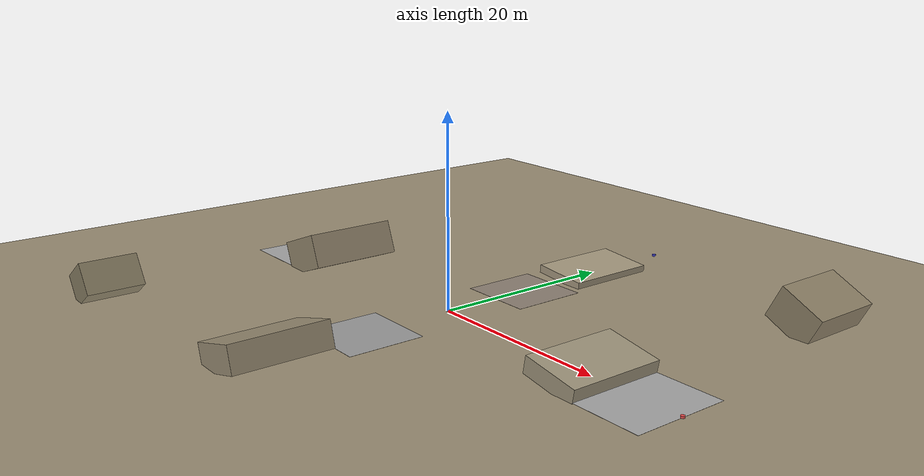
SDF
<?xml version="1.0"?>
<sdf version="1.8">
  <world name="leo_sloped_terrain">

    <!-- ── Physics ─────────────────────────────────────────────────── -->
    <physics name="1ms" type="ignored">
      <max_step_size>0.001</max_step_size>
      <real_time_factor>1.0</real_time_factor>
    </physics>

    <!-- ── Plugins ──────────────────────────────────────────────────── -->
    <plugin filename="ignition-gazebo-physics-system"
            name="ignition::gazebo::systems::Physics"/>
    <plugin filename="ignition-gazebo-sensors-system"
            name="ignition::gazebo::systems::Sensors">
      <render_engine>ogre2</render_engine>
    </plugin>
    <plugin filename="ignition-gazebo-scene-broadcaster-system"
            name="ignition::gazebo::systems::SceneBroadcaster"/>
    <plugin filename="ignition-gazebo-user-commands-system"
            name="ignition::gazebo::systems::UserCommands"/>
    <plugin filename="gz-sim-imu-system"
            name="gz::sim::systems::Imu"/>
    <plugin filename="ignition-gazebo-navsat-system"
            name="ignition::gazebo::systems::NavSat"/>

    <!-- ── GPS datum: Ankara ─────────────────────────────────────────── -->
    <spherical_coordinates>
      <surface_model>EARTH_WGS84</surface_model>
      <world_frame_orientation>ENU</world_frame_orientation>
      <latitude_deg>39.925018</latitude_deg>
      <longitude_deg>32.836956</longitude_deg>
      <elevation>890</elevation>
      <heading_deg>0</heading_deg>
    </spherical_coordinates>

    <!-- ── Lighting ─────────────────────────────────────────────────── -->
    <light name="sun" type="directional">
      <cast_shadows>true</cast_shadows>
      <pose>0 0 10 0 0 0</pose>
      <diffuse>0.8 0.8 0.8 1</diffuse>
      <specular>0.2 0.2 0.2 1</specular>
      <attenuation>
        <range>1000</range>
        <constant>0.9</constant>
        <linear>0.01</linear>
        <quadratic>0.001</quadratic>
      </attenuation>
      <direction>-0.5 0.1 -0.9</direction>
    </light>

    <!-- ── Ground plane (base) ──────────────────────────────────────── -->
    <model name="ground_plane">
      <static>true</static>
      <link name="link">
        <collision name="collision">
          <geometry>
            <plane>
              <normal>0 0 1</normal>
              <size>200 200</size>
            </plane>
          </geometry>
          <surface>
            <friction>
              <ode><mu>0.8</mu><mu2>0.8</mu2></ode>
            </friction>
          </surface>
        </collision>
        <visual name="visual">
          <geometry>
            <plane>
              <normal>0 0 1</normal>
              <size>200 200</size>
            </plane>
          </geometry>
          <material>
            <!-- Rocky terrain -->
            <ambient>0.5 0.45 0.35 1</ambient>
            <diffuse>0.6 0.55 0.45 1</diffuse>
            <specular>0.05 0.05 0.04 1</specular>
          </material>
        </visual>
      </link>
    </model>

    <!-- ── 5° Slope (gentle) — North ────────────────────────────────── -->
    <model name="slope_5deg">
      <static>true</static>
      <pose>0 20 0.435 0 0.087 0</pose>
      <link name="link">
        <collision name="c">
          <geometry><box><size>6 10 0.87</size></box></geometry>
          <surface><friction><ode><mu>0.8</mu><mu2>0.8</mu2></ode></friction></surface>
        </collision>
        <visual name="v">
          <geometry><box><size>6 10 0.87</size></box></geometry>
          <material><ambient>0.55 0.5 0.4 1</ambient><diffuse>0.65 0.6 0.5 1</diffuse></material>
        </visual>
      </link>
    </model>

    <!-- ── 10° Slope — East ─────────────────────────────────────────── -->
    <model name="slope_10deg">
      <static>true</static>
      <pose>20 0 0.88 0 0.176 0</pose>
      <link name="link">
        <collision name="c">
          <geometry><box><size>6 10 1.76</size></box></geometry>
          <surface><friction><ode><mu>0.8</mu><mu2>0.8</mu2></ode></friction></surface>
        </collision>
        <visual name="v">
          <geometry><box><size>6 10 1.76</size></box></geometry>
          <material><ambient>0.52 0.48 0.38 1</ambient><diffuse>0.62 0.58 0.48 1</diffuse></material>
        </visual>
      </link>
    </model>

    <!-- ── 15° Slope — South ────────────────────────────────────────── -->
    <model name="slope_15deg">
      <static>true</static>
      <pose>0 -20 1.34 0 -0.268 0</pose>
      <link name="link">
        <collision name="c">
          <geometry><box><size>6 10 2.68</size></box></geometry>
          <surface><friction><ode><mu>0.75</mu><mu2>0.75</mu2></ode></friction></surface>
        </collision>
        <visual name="v">
          <geometry><box><size>6 10 2.68</size></box></geometry>
          <material><ambient>0.5 0.45 0.35 1</ambient><diffuse>0.6 0.55 0.45 1</diffuse></material>
        </visual>
      </link>
    </model>

    <!-- ── 20° Slope — West ─────────────────────────────────────────── -->
    <model name="slope_20deg">
      <static>true</static>
      <pose>-20 0 1.82 0 -0.364 0</pose>
      <link name="link">
        <collision name="c">
          <geometry><box><size>6 10 3.64</size></box></geometry>
          <surface><friction><ode><mu>0.7</mu><mu2>0.7</mu2></ode></friction></surface>
        </collision>
        <visual name="v">
          <geometry><box><size>6 10 3.64</size></box></geometry>
          <material><ambient>0.48 0.43 0.33 1</ambient><diffuse>0.58 0.53 0.43 1</diffuse></material>
        </visual>
      </link>
    </model>

    <!-- ── 25° Slope (steep) — NE ───────────────────────────────────── -->
    <model name="slope_25deg">
      <static>true</static>
      <pose>25 25 1.865 0 0.466 0</pose>
      <link name="link">
        <collision name="c">
          <geometry><box><size>5 8 3.73</size></box></geometry>
          <surface><friction><ode><mu>0.65</mu><mu2>0.65</mu2></ode></friction></surface>
        </collision>
        <visual name="v">
          <geometry><box><size>5 8 3.73</size></box></geometry>
          <material><ambient>0.45 0.4 0.3 1</ambient><diffuse>0.55 0.5 0.4 1</diffuse></material>
        </visual>
      </link>
    </model>

    <!-- ── 30° Slope (very steep) — SW ──────────────────────────────── -->
    <model name="slope_30deg">
      <static>true</static>
      <pose>-25 -25 1.73 0 -0.577 0</pose>
      <link name="link">
        <collision name="c">
          <geometry><box><size>4 6 3.46</size></box></geometry>
          <surface><friction><ode><mu>0.6</mu><mu2>0.6</mu2></ode></friction></surface>
        </collision>
        <visual name="v">
          <geometry><box><size>4 6 3.46</size></box></geometry>
          <material><ambient>0.42 0.38 0.28 1</ambient><diffuse>0.52 0.48 0.38 1</diffuse></material>
        </visual>
      </link>
    </model>

    <!-- ════════════════════════════════════════════════════════════════
         FLAT RECOVERY ZONES — Between slopes
         ════════════════════════════════════════════════════════════════ -->

    <model name="flat_zone_ne">
      <static>true</static>
      <pose>25 0 0.01 0 0 0</pose>
      <link name="link">
        <collision name="c">
          <geometry><plane><normal>0 0 1</normal><size>10 10</size></plane></geometry>
          <surface><friction><ode><mu>0.85</mu></ode></friction></surface>
        </collision>
        <visual name="v">
          <geometry><plane><normal>0 0 1</normal><size>10 10</size></plane></geometry>
          <material><ambient>0.6 0.6 0.6 1</ambient><diffuse>0.65 0.65 0.65 1</diffuse></material>
        </visual>
      </link>
    </model>

    <model name="flat_zone_sw">
      <static>true</static>
      <pose>-25 0 0.01 0 0 0</pose>
      <link name="link">
        <collision name="c">
          <geometry><plane><normal>0 0 1</normal><size>10 10</size></plane></geometry>
          <surface><friction><ode><mu>0.85</mu></ode></friction></surface>
        </collision>
        <visual name="v">
          <geometry><plane><normal>0 0 1</normal><size>10 10</size></plane></geometry>
          <material><ambient>0.6 0.6 0.6 1</ambient><diffuse>0.65 0.65 0.65 1</diffuse></material>
        </visual>
      </link>
    </model>

    <!-- ════════════════════════════════════════════════════════════════
         ROUGH TERRAIN PATCHES — Different surface textures
         ════════════════════════════════════════════════════════════════ -->

    <!-- Gravel patch -->
    <model name="gravel_patch">
      <static>true</static>
      <pose>0 10 0.01 0 0 0</pose>
      <link name="link">
        <collision name="c">
          <geometry><plane><normal>0 0 1</normal><size>8 8</size></plane></geometry>
          <surface><friction><ode><mu>0.6</mu><mu2>0.6</mu2></ode></friction></surface>
        </collision>
        <visual name="v">
          <geometry><plane><normal>0 0 1</normal><size>8 8</size></plane></geometry>
          <material><ambient>0.45 0.4 0.35 1</ambient><diffuse>0.55 0.5 0.45 1</diffuse></material>
        </visual>
      </link>
    </model>

    <!-- Smooth rock patch -->
    <model name="smooth_rock">
      <static>true</static>
      <pose>0 -10 0.01 0 0 0</pose>
      <link name="link">
        <collision name="c">
          <geometry><plane><normal>0 0 1</normal><size>8 8</size></plane></geometry>
          <surface><friction><ode><mu>0.9</mu><mu2>0.9</mu2></ode></friction></surface>
        </collision>
        <visual name="v">
          <geometry><plane><normal>0 0 1</normal><size>8 8</size></plane></geometry>
          <material><ambient>0.55 0.55 0.55 1</ambient><diffuse>0.6 0.6 0.6 1</diffuse></material>
        </visual>
      </link>
    </model>

    <!-- ════════════════════════════════════════════════════════════════
         MARKERS — Navigation waypoints
         ════════════════════════════════════════════════════════════════ -->

    <model name="marker_start">
      <static>true</static>
      <pose>0 0 0.1 0 0 0</pose>
      <link name="link">
        <visual name="v">
          <geometry><cylinder><radius>0.2</radius><length>0.2</length></cylinder></geometry>
          <material><ambient>0.2 0.8 0.2 1</ambient><diffuse>0.3 0.9 0.3 1</diffuse></material>
        </visual>
      </link>
    </model>

    <model name="marker_north">
      <static>true</static>
      <pose>0 30 0.1 0 0 0</pose>
      <link name="link">
        <visual name="v">
          <geometry><cylinder><radius>0.2</radius><length>0.2</length></cylinder></geometry>
          <material><ambient>0.2 0.2 0.8 1</ambient><diffuse>0.3 0.3 0.9 1</diffuse></material>
        </visual>
      </link>
    </model>

    <model name="marker_east">
      <static>true</static>
      <pose>30 0 0.1 0 0 0</pose>
      <link name="link">
        <visual name="v">
          <geometry><cylinder><radius>0.2</radius><length>0.2</length></cylinder></geometry>
          <material><ambient>0.8 0.2 0.2 1</ambient><diffuse>0.9 0.3 0.3 1</diffuse></material>
        </visual>
      </link>
    </model>

  </world>
</sdf>
